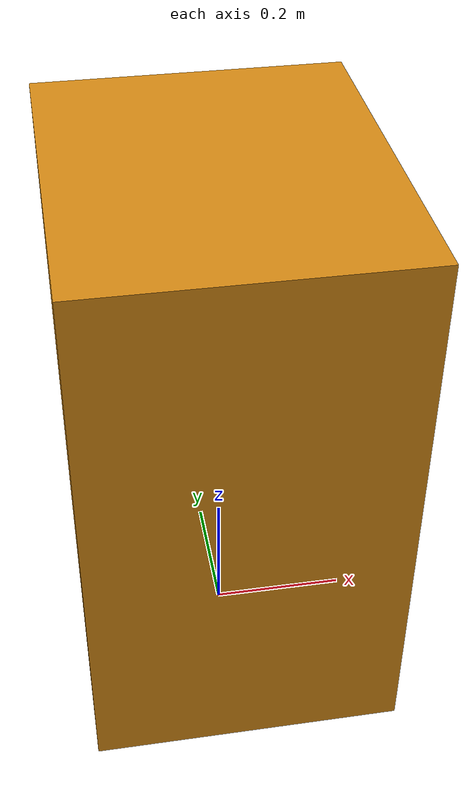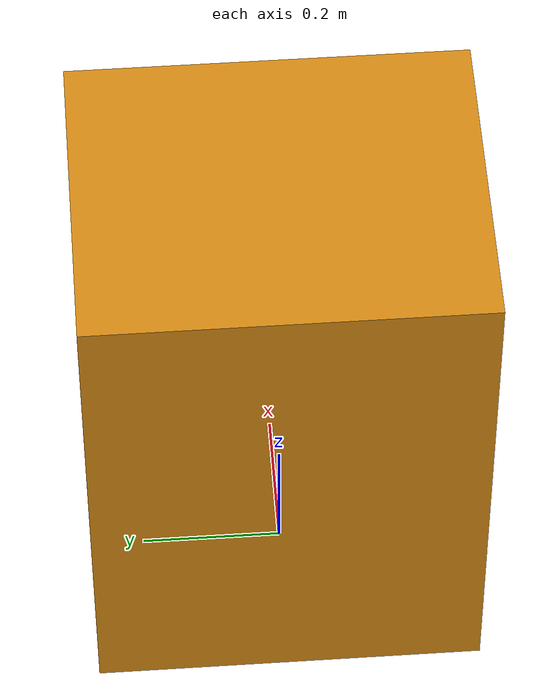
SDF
<?xml version="1.0"?>
<sdf version="1.7">
  <model name="moving_obstacle">
    <link name="anchor_link">
      <inertial>
        <mass>1.0</mass>
        <inertia>
          <ixx>0.1</ixx><ixy>0</ixy><ixz>0</ixz>
          <iyy>0.1</iyy><iyz>0</iyz><izz>0.1</izz>
        </inertia>
      </inertial>
    </link>

    <joint name="world_fixed" type="fixed">
      <parent>world</parent>
      <child>anchor_link</child>
    </joint>

    <link name="obstacle_link">
      <pose>0 0 0.4 0 0 0</pose>
      <inertial>
        <mass>20.0</mass>
        <inertia>
          <ixx>2.0</ixx><ixy>0</ixy><ixz>0</ixz>
          <iyy>2.0</iyy><iyz>0</iyz><izz>1.0</izz>
        </inertia>
      </inertial>
      <collision name="obstacle_collision">
        <geometry>
          <box><size>0.45 0.55 0.8</size></box>
        </geometry>
      </collision>
      <visual name="obstacle_visual">
        <geometry>
          <box><size>0.45 0.55 0.8</size></box>
        </geometry>
        <material>
          <ambient>0.85 0.55 0.08 1</ambient>
          <diffuse>0.85 0.55 0.08 1</diffuse>
          <specular>0.08 0.08 0.08 1</specular>
        </material>
      </visual>
    </link>

    <joint name="slider_joint" type="prismatic">
      <parent>anchor_link</parent>
      <child>obstacle_link</child>
      <axis>
        <xyz>0 1 0</xyz>
        <limit>
          <lower>-0.95</lower>
          <upper>0.95</upper>
          <effort>2000</effort>
          <velocity>1.5</velocity>
        </limit>
        <dynamics>
          <damping>8.0</damping>
        </dynamics>
      </axis>
    </joint>

    <plugin
      filename="ignition-gazebo-joint-position-controller-system"
      name="gz::sim::systems::JointPositionController">
      <joint_name>slider_joint</joint_name>
      <topic>/simulation/moving_obstacle/gz_target</topic>
      <p_gain>180.0</p_gain>
      <i_gain>0.0</i_gain>
      <d_gain>25.0</d_gain>
      <cmd_max>2000.0</cmd_max>
      <cmd_min>-2000.0</cmd_min>
    </plugin>
  </model>
</sdf>
